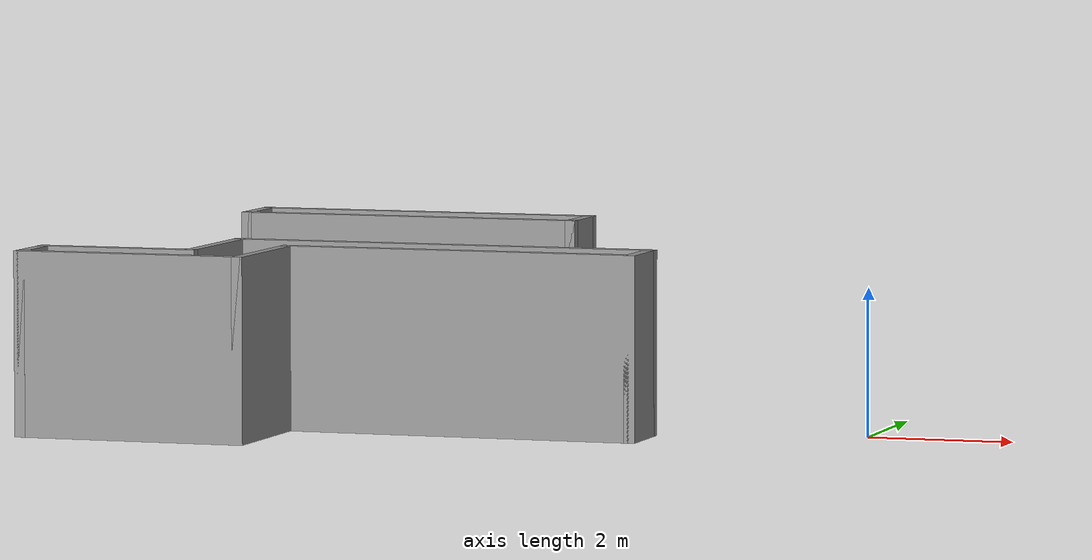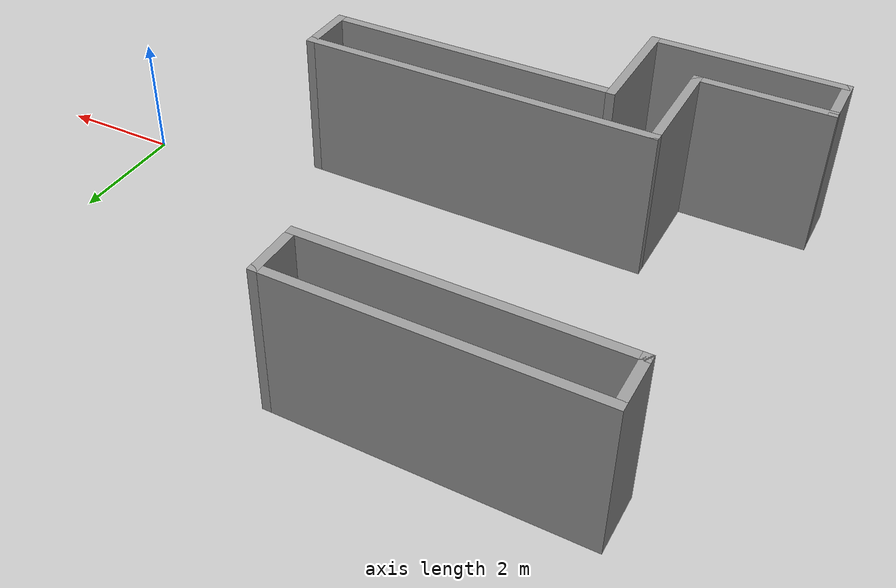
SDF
<?xml version='1.0'?>
<sdf version='1.6'>
  <model name='DistBugMap1'>
    <pose frame=''>-6.77706 0.444536 0 0 -0 0</pose>
    <link name='Wall_0'>
      <collision name='Wall_0_Collision'>
        <geometry>
          <box>
            <size>5 0.15 2.5</size>
          </box>
        </geometry>
        <pose frame=''>0 0 1.25 0 -0 0</pose>
      </collision>
      <visual name='Wall_0_Visual'>
        <pose frame=''>0 0 1.25 0 -0 0</pose>
        <geometry>
          <box>
            <size>5 0.15 2.5</size>
          </box>
        </geometry>
        <material>
          <script>
            <uri>file://media/materials/scripts/gazebo.material</uri>
            <name>Gazebo/Grey</name>
          </script>
          <ambient>1 1 1 1</ambient>
        </material>
      </visual>
      <pose frame=''>-0.968377 3.10714 0 0 -0 0</pose>
    </link>
    <link name='Wall_1'>
      <collision name='Wall_1_Collision'>
        <geometry>
          <box>
            <size>1 0.15 2.5</size>
          </box>
        </geometry>
        <pose frame=''>0 0 1.25 0 -0 0</pose>
      </collision>
      <visual name='Wall_1_Visual'>
        <pose frame=''>0 0 1.25 0 -0 0</pose>
        <geometry>
          <box>
            <size>1 0.15 2.5</size>
          </box>
        </geometry>
        <material>
          <script>
            <uri>file://media/materials/scripts/gazebo.material</uri>
            <name>Gazebo/Grey</name>
          </script>
          <ambient>1 1 1 1</ambient>
        </material>
      </visual>
      <pose frame=''>1.45662 3.53214 0 0 -0 1.5708</pose>
    </link>
    <link name='Wall_10'>
      <collision name='Wall_10_Collision'>
        <geometry>
          <box>
            <size>2 0.15 2.5</size>
          </box>
        </geometry>
        <pose frame=''>0 0 1.25 0 -0 0</pose>
      </collision>
      <visual name='Wall_10_Visual'>
        <pose frame=''>0 0 1.25 0 -0 0</pose>
        <geometry>
          <box>
            <size>2 0.15 2.5</size>
          </box>
        </geometry>
        <material>
          <script>
            <uri>file://media/materials/scripts/gazebo.material</uri>
            <name>Gazebo/Grey</name>
          </script>
          <ambient>1 1 1 1</ambient>
        </material>
      </visual>
      <pose frame=''>-0.875 -3.03214 0 0 -0 1.5708</pose>
    </link>
    <link name='Wall_11'>
      <collision name='Wall_11_Collision'>
        <geometry>
          <box>
            <size>5 0.15 2.5</size>
          </box>
        </geometry>
        <pose frame=''>0 0 1.25 0 -0 0</pose>
      </collision>
      <visual name='Wall_11_Visual'>
        <pose frame=''>0 0 1.25 0 -0 0</pose>
        <geometry>
          <box>
            <size>5 0.15 2.5</size>
          </box>
        </geometry>
        <material>
          <script>
            <uri>file://media/materials/scripts/gazebo.material</uri>
            <name>Gazebo/Grey</name>
          </script>
          <ambient>1 1 1 1</ambient>
        </material>
      </visual>
      <pose frame=''>1.55 -2.10714 0 0 -0 0</pose>
    </link>
    <link name='Wall_12'>
      <collision name='Wall_12_Collision'>
        <geometry>
          <box>
            <size>1 0.15 2.5</size>
          </box>
        </geometry>
        <pose frame=''>0 0 1.25 0 -0 0</pose>
      </collision>
      <visual name='Wall_12_Visual'>
        <pose frame=''>0 0 1.25 0 -0 0</pose>
        <geometry>
          <box>
            <size>1 0.15 2.5</size>
          </box>
        </geometry>
        <material>
          <script>
            <uri>file://media/materials/scripts/gazebo.material</uri>
            <name>Gazebo/Grey</name>
          </script>
          <ambient>1 1 1 1</ambient>
        </material>
      </visual>
      <pose frame=''>3.975 -1.68214 0 0 -0 1.5708</pose>
    </link>
    <link name='Wall_2'>
      <collision name='Wall_2_Collision'>
        <geometry>
          <box>
            <size>5 0.15 2.5</size>
          </box>
        </geometry>
        <pose frame=''>0 0 1.25 0 -0 0</pose>
      </collision>
      <visual name='Wall_2_Visual'>
        <pose frame=''>0 0 1.25 0 -0 0</pose>
        <geometry>
          <box>
            <size>5 0.15 2.5</size>
          </box>
        </geometry>
        <material>
          <script>
            <uri>file://media/materials/scripts/gazebo.material</uri>
            <name>Gazebo/Grey</name>
          </script>
          <ambient>1 1 1 1</ambient>
        </material>
      </visual>
      <pose frame=''>-0.968377 3.95714 0 0 -0 3.14159</pose>
    </link>
    <link name='Wall_3'>
      <collision name='Wall_3_Collision'>
        <geometry>
          <box>
            <size>1 0.15 2.5</size>
          </box>
        </geometry>
        <pose frame=''>0 0 1.25 0 -0 0</pose>
      </collision>
      <visual name='Wall_3_Visual'>
        <pose frame=''>0 0 1.25 0 -0 0</pose>
        <geometry>
          <box>
            <size>1 0.15 2.5</size>
          </box>
        </geometry>
        <material>
          <script>
            <uri>file://media/materials/scripts/gazebo.material</uri>
            <name>Gazebo/Grey</name>
          </script>
          <ambient>1 1 1 1</ambient>
        </material>
      </visual>
      <pose frame=''>-3.39338 3.53214 0 0 0 -1.5708</pose>
    </link>
    <link name='Wall_5'>
      <collision name='Wall_5_Collision'>
        <geometry>
          <box>
            <size>6 0.15 2.5</size>
          </box>
        </geometry>
        <pose frame=''>0 0 1.25 0 -0 0</pose>
      </collision>
      <visual name='Wall_5_Visual'>
        <pose frame=''>0 0 1.25 0 -0 0</pose>
        <geometry>
          <box>
            <size>6 0.15 2.5</size>
          </box>
        </geometry>
        <material>
          <script>
            <uri>file://media/materials/scripts/gazebo.material</uri>
            <name>Gazebo/Grey</name>
          </script>
          <ambient>1 1 1 1</ambient>
        </material>
      </visual>
      <pose frame=''>1.05 -1.25714 0 0 -0 3.14159</pose>
    </link>
    <link name='Wall_6'>
      <collision name='Wall_6_Collision'>
        <geometry>
          <box>
            <size>2 0.15 2.5</size>
          </box>
        </geometry>
        <pose frame=''>0 0 1.25 0 -0 0</pose>
      </collision>
      <visual name='Wall_6_Visual'>
        <pose frame=''>0 0 1.25 0 -0 0</pose>
        <geometry>
          <box>
            <size>2 0.15 2.5</size>
          </box>
        </geometry>
        <material>
          <script>
            <uri>file://media/materials/scripts/gazebo.material</uri>
            <name>Gazebo/Grey</name>
          </script>
          <ambient>1 1 1 1</ambient>
        </material>
      </visual>
      <pose frame=''>-1.875 -2.18214 0 0 0 -1.5708</pose>
    </link>
    <link name='Wall_7'>
      <collision name='Wall_7_Collision'>
        <geometry>
          <box>
            <size>2.25 0.15 2.5</size>
          </box>
        </geometry>
        <pose frame=''>0 0 1.25 0 -0 0</pose>
      </collision>
      <visual name='Wall_7_Visual'>
        <pose frame=''>0 0 1.25 0 -0 0</pose>
        <geometry>
          <box>
            <size>2.25 0.15 2.5</size>
          </box>
        </geometry>
        <material>
          <script>
            <uri>file://media/materials/scripts/gazebo.material</uri>
            <name>Gazebo/Grey</name>
          </script>
          <ambient>1 1 1 1</ambient>
        </material>
      </visual>
      <pose frame=''>-2.925 -3.10714 0 0 -0 3.14159</pose>
    </link>
    <link name='Wall_8'>
      <collision name='Wall_8_Collision'>
        <geometry>
          <box>
            <size>1 0.15 2.5</size>
          </box>
        </geometry>
        <pose frame=''>0 0 1.25 0 -0 0</pose>
      </collision>
      <visual name='Wall_8_Visual'>
        <pose frame=''>0 0 1.25 0 -0 0</pose>
        <geometry>
          <box>
            <size>1 0.15 2.5</size>
          </box>
        </geometry>
        <material>
          <script>
            <uri>file://media/materials/scripts/gazebo.material</uri>
            <name>Gazebo/Grey</name>
          </script>
          <ambient>1 1 1 1</ambient>
        </material>
      </visual>
      <pose frame=''>-3.975 -3.53214 0 0 0 -1.5708</pose>
    </link>
    <link name='Wall_9'>
      <collision name='Wall_9_Collision'>
        <geometry>
          <box>
            <size>3.25 0.15 2.5</size>
          </box>
        </geometry>
        <pose frame=''>0 0 1.25 0 -0 0</pose>
      </collision>
      <visual name='Wall_9_Visual'>
        <pose frame=''>0 0 1.25 0 -0 0</pose>
        <geometry>
          <box>
            <size>3.25 0.15 2.5</size>
          </box>
        </geometry>
        <material>
          <script>
            <uri>file://media/materials/scripts/gazebo.material</uri>
            <name>Gazebo/Grey</name>
          </script>
          <ambient>1 1 1 1</ambient>
        </material>
      </visual>
      <pose frame=''>-2.425 -3.95714 0 0 -0 0</pose>
    </link>
    <static>1</static>
  </model>
</sdf>
